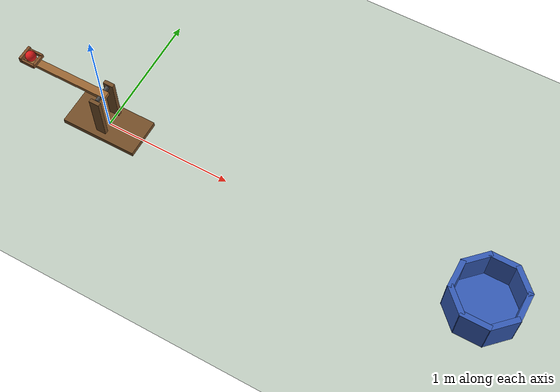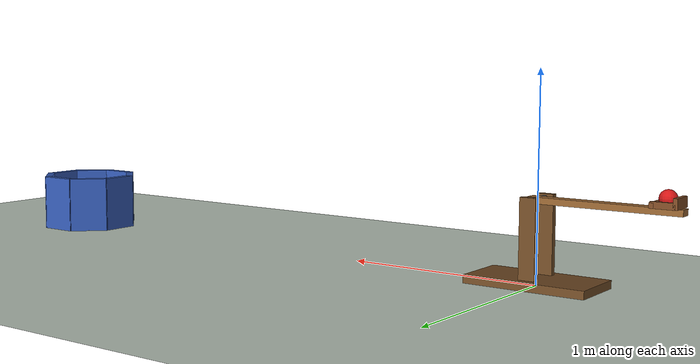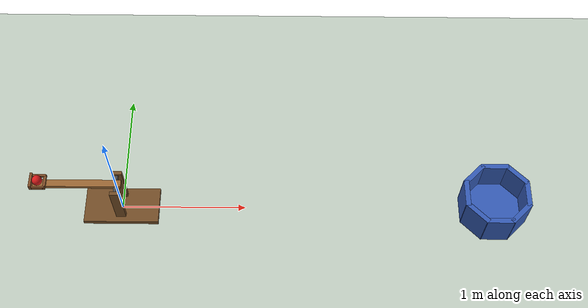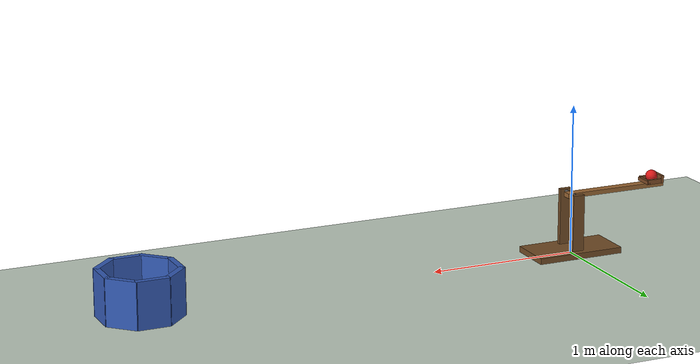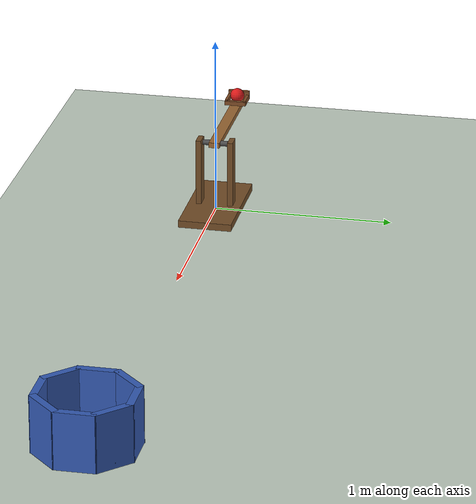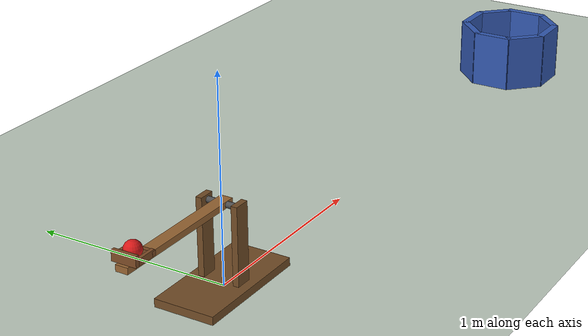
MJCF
<mujoco model="catapult_bucket">
  <compiler angle="radian"/>
  <option timestep="0.002" integrator="implicitfast"/>

  <worldbody>
    <light name="sun" pos="1.5 -2 5" dir="0 0.3 -1" directional="true"/>
    <geom name="floor" type="plane" pos="1.5 0 0" size="5 3 0.1" rgba="0.75 0.8 0.75 1"/>

    <geom name="catapult_base" type="box" pos="0 0 0.02" size="0.3 0.15 0.02" rgba="0.45 0.3 0.15 1"/>
    <geom name="catapult_upright_left" type="box" pos="0 0.09 0.23" size="0.04 0.015 0.19" rgba="0.45 0.3 0.15 1"/>
    <geom name="catapult_upright_right" type="box" pos="0 -0.09 0.23" size="0.04 0.015 0.19" rgba="0.45 0.3 0.15 1"/>

    <body name="catapult_arm" pos="0 0 0.4">
      <joint name="catapult_hinge" type="hinge" axis="0 1 0" range="0 0.6981" limited="true" solreflimit="0.005 1"/>
      <geom name="catapult_axle" type="cylinder" fromto="0 -0.07 0 0 0.07 0" size="0.015" mass="0.02" rgba="0.3 0.3 0.3 1"/>
      <geom name="catapult_beam" type="box" pos="-0.32 0 0" size="0.36 0.03 0.015" mass="0.3" priority="1" friction="0.1 0.005 0.0001" solref="0.005 1" rgba="0.6 0.4 0.2 1"/>
      <geom name="catapult_cup_outer" type="box" pos="-0.655 0 0.04" size="0.01 0.06 0.025" mass="0.02" priority="1" friction="0.1 0.005 0.0001" solref="0.005 1" rgba="0.5 0.3 0.15 1"/>
      <geom name="catapult_cup_inner" type="box" pos="-0.55 0 0.027" size="0.01 0.06 0.012" mass="0.02" priority="1" friction="0.1 0.005 0.0001" solref="0.005 1" rgba="0.5 0.3 0.15 1"/>
      <geom name="catapult_cup_side_left" type="box" pos="-0.6 0.052 0.03" size="0.055 0.008 0.015" mass="0.02" priority="1" friction="0.1 0.005 0.0001" solref="0.005 1" rgba="0.5 0.3 0.15 1"/>
      <geom name="catapult_cup_side_right" type="box" pos="-0.6 -0.052 0.03" size="0.055 0.008 0.015" mass="0.02" priority="1" friction="0.1 0.005 0.0001" solref="0.005 1" rgba="0.5 0.3 0.15 1"/>
    </body>

    <body name="ball" pos="-0.604 0 0.455">
      <freejoint name="ball_free"/>
      <geom name="ball" type="sphere" size="0.04" mass="0.1" solref="0.005 1" rgba="0.85 0.1 0.1 1"/>
    </body>

    <body name="bucket" pos="3 0 0">
      <geom name="bucket_bottom" type="cylinder" pos="0 0 0.02" size="0.26 0.02" solref="0.005 1" rgba="0.2 0.35 0.7 1"/>
      <geom name="bucket_wall0" type="box" pos="0.24 0 0.155" euler="0 0 0" size="0.02 0.11 0.155" solref="0.005 1" rgba="0.2 0.35 0.7 1"/>
      <geom name="bucket_wall1" type="box" pos="0.1697 0.1697 0.155" euler="0 0 0.7854" size="0.02 0.11 0.155" solref="0.005 1" rgba="0.2 0.35 0.7 1"/>
      <geom name="bucket_wall2" type="box" pos="0 0.24 0.155" euler="0 0 1.5708" size="0.02 0.11 0.155" solref="0.005 1" rgba="0.2 0.35 0.7 1"/>
      <geom name="bucket_wall3" type="box" pos="-0.1697 0.1697 0.155" euler="0 0 2.3562" size="0.02 0.11 0.155" solref="0.005 1" rgba="0.2 0.35 0.7 1"/>
      <geom name="bucket_wall4" type="box" pos="-0.24 0 0.155" euler="0 0 3.1416" size="0.02 0.11 0.155" solref="0.005 1" rgba="0.2 0.35 0.7 1"/>
      <geom name="bucket_wall5" type="box" pos="-0.1697 -0.1697 0.155" euler="0 0 3.9270" size="0.02 0.11 0.155" solref="0.005 1" rgba="0.2 0.35 0.7 1"/>
      <geom name="bucket_wall6" type="box" pos="0 -0.24 0.155" euler="0 0 4.7124" size="0.02 0.11 0.155" solref="0.005 1" rgba="0.2 0.35 0.7 1"/>
      <geom name="bucket_wall7" type="box" pos="0.1697 -0.1697 0.155" euler="0 0 5.4978" size="0.02 0.11 0.155" solref="0.005 1" rgba="0.2 0.35 0.7 1"/>
    </body>
  </worldbody>

  <actuator>
    <velocity name="catapult_motor" joint="catapult_hinge" kv="40" forcelimited="true" forcerange="-20 20" ctrllimited="true" ctrlrange="0 10"/>
  </actuator>

  <keyframe>
    <key name="start" qpos="0 -0.604 0 0.455 1 0 0 0" qvel="0 0 0 0 0 0 0" ctrl="8.89"/>
  </keyframe>
</mujoco>
